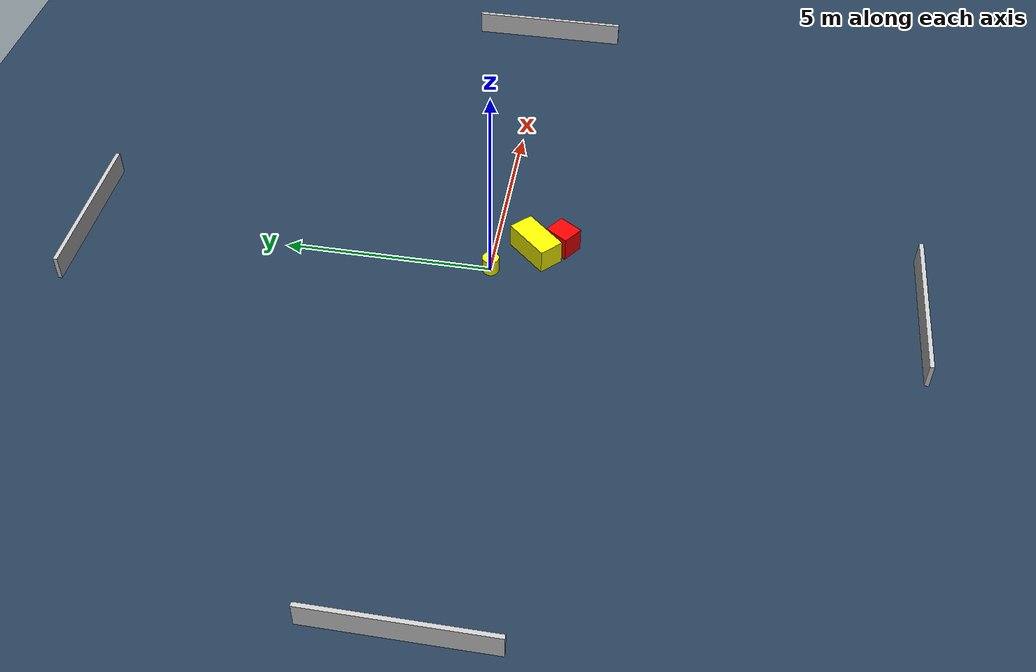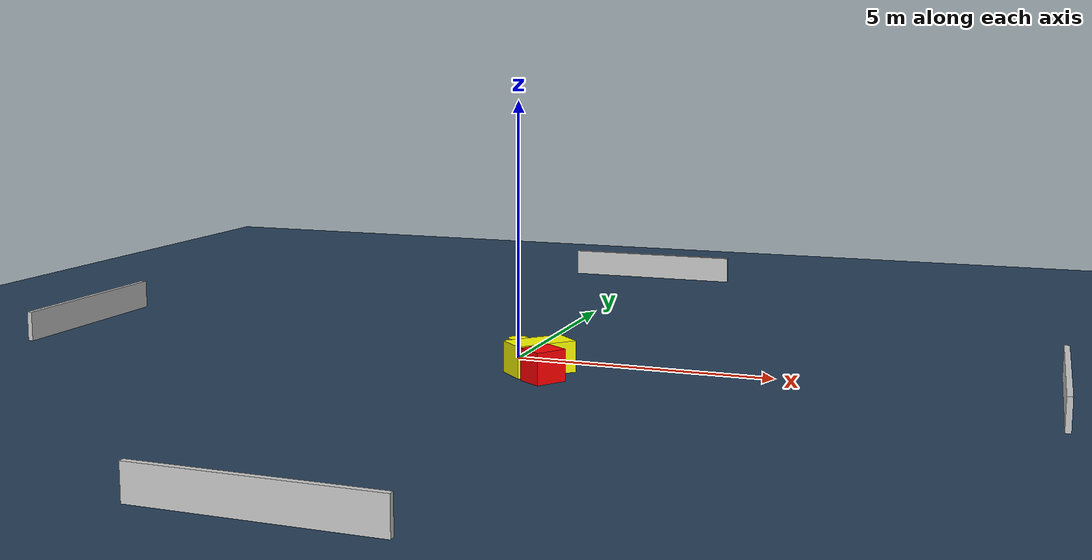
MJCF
<?xml version="1.0" ?>
<mujoco model="generated_environment">
  <option timestep="0.01" integrator="RK4" cone="elliptic"/>
  <default>
    <geom density="1"/>
  </default>
  <asset>
    <texture builtin="gradient" height="3072" name="skybox" rgb1="0.3 0.5 0.7" rgb2="0 0 0" type="skybox" width="512"/>
    <texture builtin="checker" height="300" name="groundplane" rgb1="0.2 0.3 0.4" rgb2="0.1 0.2 0.3" type="2d" width="300"/>
    <material name="groundplane" reflectance="0.2" texrepeat="5 5" texture="groundplane"/>
  </asset>
  <worldbody>
    <light dir="0 0 -1" directional="true" pos="0 0 1.5"/>
    <geom condim="3" friction="0.5 0.005 0.001" material="groundplane" name="floor" pos="0 0 0" size="0 0 0.05" type="plane"/>
    <body name="walls">
      <geom name="wall_1" condim="4" pos="-10.0 0.0 0.3" rgba="0.800000011920929 0.800000011920929 0.800000011920929 1.0" size="0.05 2.0 0.3" type="box"/>
      <geom name="wall_2" condim="4" pos="10.0 0.0 0.3" rgba="0.800000011920929 0.800000011920929 0.800000011920929 1.0" size="0.05 2.0 0.3" type="box"/>
      <geom name="wall_3" condim="4" pos="0.0 -10.0 0.3" rgba="0.800000011920929 0.800000011920929 0.800000011920929 1.0" size="2.0 0.05 0.3" type="box"/>
      <geom name="wall_4" condim="4" pos="0.0 10.0 0.3" rgba="0.800000011920929 0.800000011920929 0.800000011920929 1.0" size="2.0 0.05 0.3" type="box"/>
    </body>
    <body name="robot">
      <joint name="joint_x" type="slide" pos="0 0 0" axis="1 0 0"/>
      <joint name="joint_y" type="slide" pos="0 0 0" axis="0 1 0"/>
      <geom name="robot" type="cylinder" pos="0.0 0.0 0.2" size="0.2 0.2 0.0" mass="5.0" friction="1.0 0.005 0.0001" condim="4" rgba="1.0 1.0 0.0 1.0"/>
    </body>
    <body name="obstacle_1_movable">
      <geom name="obstacle_1_movable" condim="4" pos="0.7710872896340767 -0.9674598282211434 0.3" euler="0 0 136.35885918536604" friction="0.0 0.005 0.001" rgba="1.0 1.0 0.0 1.0" size="0.30884446807242816 0.6031914599129257 0.3" type="box" mass="0.1"/>
      <joint type="free"/>
    </body>
    <body name="obstacle_2_static">
      <geom name="obstacle_2_static" condim="4" pos="1.0519611161770537 -1.5913845594421978 0.3" euler="0 0 145.20564762494337" friction="0.0 0.005 0.001" rgba="1.0 0.0 0.0 1.0" size="0.2702174783264824 0.31122333354869863 0.3" type="box"/>
    </body>
  </worldbody>
  <actuator>
    <motor name="actuator_x" joint="joint_x" gear="1" ctrlrange="-1 1"/>
    <motor name="actuator_y" joint="joint_y" gear="1" ctrlrange="-1 1"/>
  </actuator>
</mujoco>
